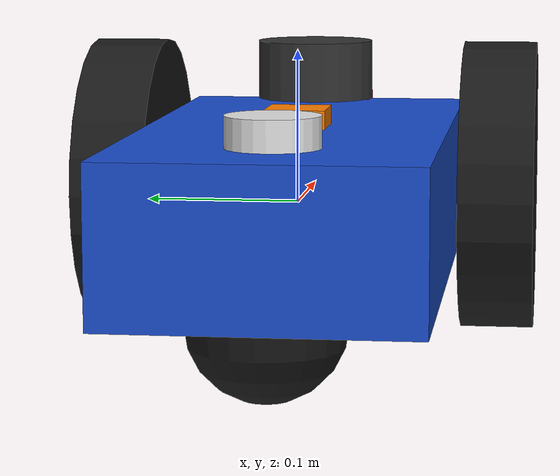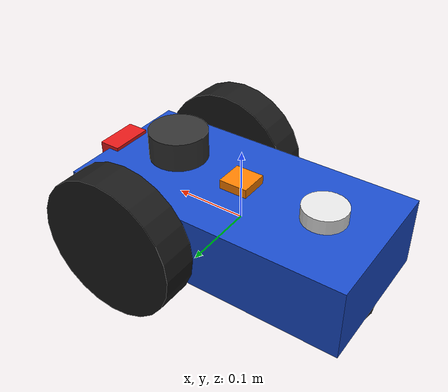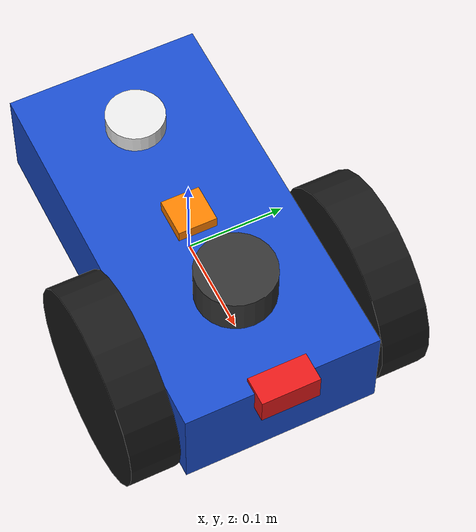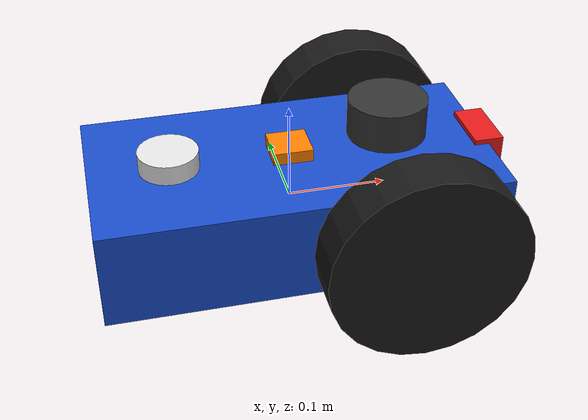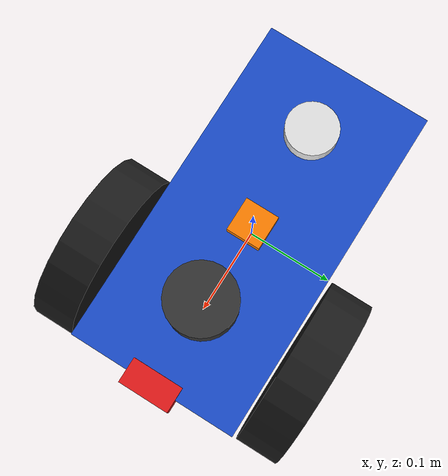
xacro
<?xml version="1.0"?>
<robot name="my_robot" xmlns:xacro="http://www.ros.org/wiki/xacro">

  <xacro:arg name="use_ros2_control" default="true" />
  <xacro:arg name="controllers_file"
             default="$(find my_robot_sensors)/config/diff_drive_controller.yaml" />

  <!-- ==================== dimensoes ==================== -->
  <xacro:property name="chassis_x" value="0.4" />
  <xacro:property name="chassis_y" value="0.2" />
  <xacro:property name="chassis_z" value="0.1" />
  <xacro:property name="chassis_mass" value="5.0" />

  <xacro:property name="wheel_radius" value="0.1" />
  <xacro:property name="wheel_length" value="0.05" />
  <xacro:property name="wheel_mass" value="0.5" />
  <xacro:property name="wheel_offset_x" value="0.1" />
  <xacro:property name="wheel_offset_y" value="0.13" />

  <xacro:property name="caster_radius" value="0.05" />
  <xacro:property name="caster_mass" value="0.2" />

  <xacro:property name="half_pi" value="1.5707963267948966" />

  <!-- ==================== macros de inercia ==================== -->
  <xacro:macro name="box_inertia" params="m x y z">
    <inertial>
      <mass value="${m}" />
      <inertia ixx="${m * (y*y + z*z) / 12.0}" ixy="0.0" ixz="0.0"
               iyy="${m * (x*x + z*z) / 12.0}" iyz="0.0"
               izz="${m * (x*x + y*y) / 12.0}" />
    </inertial>
  </xacro:macro>

  <xacro:macro name="wheel_inertia" params="m r l">
    <inertial>
      <origin xyz="0 0 0" rpy="${half_pi} 0 0" />
      <mass value="${m}" />
      <inertia ixx="${m * (3.0*r*r + l*l) / 12.0}" ixy="0.0" ixz="0.0"
               iyy="${m * (3.0*r*r + l*l) / 12.0}" iyz="0.0"
               izz="${m * r * r / 2.0}" />
    </inertial>
  </xacro:macro>

  <xacro:macro name="sphere_inertia" params="m r">
    <inertial>
      <mass value="${m}" />
      <inertia ixx="${2.0 * m * r * r / 5.0}" ixy="0.0" ixz="0.0"
               iyy="${2.0 * m * r * r / 5.0}" iyz="0.0"
               izz="${2.0 * m * r * r / 5.0}" />
    </inertial>
  </xacro:macro>

  <!-- ==================== chassi ==================== -->
  <link name="base_link">
    <visual>
      <geometry>
        <box size="${chassis_x} ${chassis_y} ${chassis_z}" />
      </geometry>
      <material name="blue">
        <color rgba="0.1 0.3 0.8 1.0" />
      </material>
    </visual>
    <collision>
      <geometry>
        <box size="${chassis_x} ${chassis_y} ${chassis_z}" />
      </geometry>
    </collision>
    <xacro:box_inertia m="${chassis_mass}" x="${chassis_x}" y="${chassis_y}" z="${chassis_z}" />
  </link>

  <gazebo reference="base_link">
    <material>Gazebo/Blue</material>
    <mu1>0.2</mu1>
    <mu2>0.2</mu2>
  </gazebo>

  <!-- ==================== rodas ==================== -->
  <xacro:macro name="wheel" params="prefix reflect">
    <link name="${prefix}_wheel">
      <visual>
        <origin xyz="0 0 0" rpy="${half_pi} 0 0" />
        <geometry>
          <cylinder radius="${wheel_radius}" length="${wheel_length}" />
        </geometry>
        <material name="black">
          <color rgba="0.1 0.1 0.1 1.0" />
        </material>
      </visual>
      <collision>
        <origin xyz="0 0 0" rpy="${half_pi} 0 0" />
        <geometry>
          <cylinder radius="${wheel_radius}" length="${wheel_length}" />
        </geometry>
      </collision>
      <xacro:wheel_inertia m="${wheel_mass}" r="${wheel_radius}" l="${wheel_length}" />
    </link>

    <joint name="${prefix}_wheel_joint" type="continuous">
      <parent link="base_link" />
      <child link="${prefix}_wheel" />
      <origin xyz="${wheel_offset_x} ${reflect * wheel_offset_y} 0" rpy="0 0 0" />
      <axis xyz="0 1 0" />
      <limit effort="100.0" velocity="20.0" />
      <dynamics damping="0.0" friction="0.0" />
    </joint>

    <gazebo reference="${prefix}_wheel">
      <material>Gazebo/Black</material>
      <fdir1>0 1 0</fdir1>
      <mu1>0.1</mu1>
      <mu2>1.5</mu2>
      <kp>1000000.0</kp>
      <kd>10.0</kd>
      <minDepth>0.001</minDepth>
      <maxVel>0.1</maxVel>
    </gazebo>
  </xacro:macro>

  <xacro:wheel prefix="left" reflect="1" />
  <xacro:wheel prefix="right" reflect="-1" />

  <!-- ==================== roda boba ==================== -->
  <link name="caster_wheel">
    <visual>
      <geometry>
        <sphere radius="${caster_radius}" />
      </geometry>
      <material name="black">
        <color rgba="0.1 0.1 0.1 1.0" />
      </material>
    </visual>
    <collision>
      <geometry>
        <sphere radius="${caster_radius}" />
      </geometry>
    </collision>
    <xacro:sphere_inertia m="${caster_mass}" r="${caster_radius}" />
  </link>

  <joint name="caster_wheel_joint" type="fixed">
    <parent link="base_link" />
    <child link="caster_wheel" />
    <origin xyz="-0.15 0 -0.05" rpy="0 0 0" />
  </joint>

  <gazebo reference="caster_wheel">
    <material>Gazebo/Black</material>
    <mu1>0.0</mu1>
    <mu2>0.0</mu2>
    <kp>1000000.0</kp>
    <kd>10.0</kd>
    <minDepth>0.001</minDepth>
  </gazebo>

  <!-- ==================== Sensores ==================== -->
  <xacro:include filename="$(find my_robot_sensors)/urdf/sensors.xacro" />

  <!-- ==================== ros2_control ==================== -->
  <xacro:if value="$(arg use_ros2_control)">
    <ros2_control name="GazeboSystem" type="system">
      <hardware>
        <plugin>gazebo_ros2_control/GazeboSystem</plugin>
      </hardware>

      <joint name="left_wheel_joint">
        <command_interface name="velocity">
          <param name="min">-20.0</param>
          <param name="max">20.0</param>
        </command_interface>
        <state_interface name="position" />
        <state_interface name="velocity" />
      </joint>

      <joint name="right_wheel_joint">
        <command_interface name="velocity">
          <param name="min">-20.0</param>
          <param name="max">20.0</param>
        </command_interface>
        <state_interface name="position" />
        <state_interface name="velocity" />
      </joint>
    </ros2_control>

    <gazebo>
      <plugin name="gazebo_ros2_control" filename="libgazebo_ros2_control.so">
        <parameters>$(arg controllers_file)</parameters>
      </plugin>
    </gazebo>
  </xacro:if>

</robot>

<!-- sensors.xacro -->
<robot xmlns:xacro="http://www.ros.org/wiki/xacro">

  <!-- 1. IMU (Orientacao, Velocidade Angular, Aceleracao Linear)           -->
  <link name="imu_link">
    <visual>
      <geometry>
        <box size="0.04 0.04 0.015" />
      </geometry>
      <material name="orange">
        <color rgba="1.0 0.5 0.0 1.0" />
      </material>
    </visual>
    <collision>
      <geometry>
        <box size="0.04 0.04 0.015" />
      </geometry>
    </collision>
    <inertial>
      <mass value="0.05" />
      <origin xyz="0 0 0" rpy="0 0 0" />
      <inertia ixx="1e-5" ixy="0" ixz="0" iyy="1e-5" iyz="0" izz="1e-5" />
    </inertial>
  </link>

  <joint name="imu_joint" type="fixed">
    <parent link="base_link" />
    <child link="imu_link" />
    <origin xyz="0 0 0.055" rpy="0 0 0" />
  </joint>

  <gazebo reference="imu_link">
    <material>Gazebo/Orange</material>
    <sensor name="imu_sensor" type="imu">
      <always_on>true</always_on>
      <update_rate>50.0</update_rate>
      <visualize>true</visualize>
      <imu>
        <angular_velocity>
          <x>
            <noise type="gaussian">
              <mean>0.0</mean>
              <stddev>0.005</stddev>
            </noise>
          </x>
          <y>
            <noise type="gaussian">
              <mean>0.0</mean>
              <stddev>0.005</stddev>
            </noise>
          </y>
          <z>
            <noise type="gaussian">
              <mean>0.0</mean>
              <stddev>0.005</stddev>
            </noise>
          </z>
        </angular_velocity>
        <linear_acceleration>
          <x>
            <noise type="gaussian">
              <mean>0.0</mean>
              <stddev>0.05</stddev>
            </noise>
          </x>
          <y>
            <noise type="gaussian">
              <mean>0.0</mean>
              <stddev>0.05</stddev>
            </noise>
          </y>
          <z>
            <noise type="gaussian">
              <mean>0.0</mean>
              <stddev>0.05</stddev>
            </noise>
          </z>
        </linear_acceleration>
      </imu>
      <plugin name="imu_plugin" filename="libgazebo_ros_imu_sensor.so">
        <ros>
          <remapping>~/out:=/imu/data</remapping>
        </ros>
        <initial_orientation_as_reference>false</initial_orientation_as_reference>
        <frame_name>imu_link</frame_name>
      </plugin>
    </sensor>
  </gazebo>

  <!-- 2. GPS (Posicao Global e conversao posterior para XYZ)               -->
  <link name="gps_link">
    <visual>
      <geometry>
        <cylinder radius="0.03" length="0.02" />
      </geometry>
      <material name="white">
        <color rgba="0.9 0.9 0.9 1.0" />
      </material>
    </visual>
    <collision>
      <geometry>
        <cylinder radius="0.03" length="0.02" />
      </geometry>
    </collision>
    <inertial>
      <mass value="0.05" />
      <origin xyz="0 0 0" rpy="0 0 0" />
      <inertia ixx="1e-5" ixy="0" ixz="0" iyy="1e-5" iyz="0" izz="1e-5" />
    </inertial>
  </link>

  <joint name="gps_joint" type="fixed">
    <parent link="base_link" />
    <child link="gps_link" />
    <origin xyz="-0.12 0 0.06" rpy="0 0 0" />
  </joint>

  <gazebo reference="gps_link">
    <material>Gazebo/White</material>
    <sensor name="gps_sensor" type="gps">
      <always_on>true</always_on>
      <update_rate>10.0</update_rate>
      <gps>
        <position_sensing>
          <horizontal>
            <noise type="gaussian">
              <mean>0.0</mean>
              <stddev>0.3</stddev>
            </noise>
          </horizontal>
          <vertical>
            <noise type="gaussian">
              <mean>0.0</mean>
              <stddev>0.5</stddev>
            </noise>
          </vertical>
        </position_sensing>
        <velocity_sensing>
          <horizontal>
            <noise type="gaussian">
              <mean>0.0</mean>
              <stddev>0.05</stddev>
            </noise>
          </horizontal>
          <vertical>
            <noise type="gaussian">
              <mean>0.0</mean>
              <stddev>0.05</stddev>
            </noise>
          </vertical>
        </velocity_sensing>
      </gps>
      <plugin name="gps_plugin" filename="libgazebo_ros_gps_sensor.so">
        <ros>
          <remapping>~/out:=/gps/fix</remapping>
        </ros>
        <frame_name>gps_link</frame_name>
      </plugin>
    </sensor>
  </gazebo>

  <!-- 3. Camera RGB Frontal                                                -->
  <link name="camera_link">
    <visual>
      <origin xyz="0 0 0" rpy="0 0 0" />
      <geometry>
        <box size="0.03 0.06 0.03" />
      </geometry>
      <material name="red">
        <color rgba="0.9 0.1 0.1 1.0" />
      </material>
    </visual>
    <collision>
      <geometry>
        <box size="0.03 0.06 0.03" />
      </geometry>
    </collision>
    <inertial>
      <mass value="0.08" />
      <origin xyz="0 0 0" rpy="0 0 0" />
      <inertia ixx="1e-5" ixy="0" ixz="0" iyy="1e-5" iyz="0" izz="1e-5" />
    </inertial>
  </link>

  <joint name="camera_joint" type="fixed">
    <parent link="base_link" />
    <child link="camera_link" />
    <origin xyz="0.20 0 0.04" rpy="0 0 0" />
  </joint>

  <!-- Link de convensao optica ROS (Z apontando para a frente da lente) -->
  <link name="camera_optical_link" />

  <joint name="camera_optical_joint" type="fixed">
    <parent link="camera_link" />
    <child link="camera_optical_link" />
    <origin xyz="0 0 0" rpy="-1.57079632679 0 -1.57079632679" />
  </joint>

  <gazebo reference="camera_link">
    <material>Gazebo/Red</material>
    <sensor type="camera" name="front_camera">
      <update_rate>30.0</update_rate>
      <camera name="head">
        <horizontal_fov>1.3962634</horizontal_fov>
        <image>
          <width>640</width>
          <height>480</height>
          <format>R8G8B8</format>
        </image>
        <clip>
          <near>0.05</near>
          <far>30.0</far>
        </clip>
        <noise>
          <type>gaussian</type>
          <mean>0.0</mean>
          <stddev>0.008</stddev>
        </noise>
      </camera>
      <plugin name="camera_controller" filename="libgazebo_ros_camera.so">
        <ros>
          <remapping>~/image_raw:=/camera/image_raw</remapping>
          <remapping>~/camera_info:=/camera/camera_info</remapping>
        </ros>
        <camera_name>camera</camera_name>
        <frame_name>camera_optical_link</frame_name>
      </plugin>
    </sensor>
  </gazebo>

  <!-- 4. Lidar 2D Frontal (LaserScan)                                      -->
  <link name="lidar_link">
    <visual>
      <geometry>
        <cylinder radius="0.04" length="0.04" />
      </geometry>
      <material name="dark_grey">
        <color rgba="0.2 0.2 0.2 1.0" />
      </material>
    </visual>
    <collision>
      <geometry>
        <cylinder radius="0.04" length="0.04" />
      </geometry>
    </collision>
    <inertial>
      <mass value="0.12" />
      <origin xyz="0 0 0" rpy="0 0 0" />
      <inertia ixx="1e-5" ixy="0" ixz="0" iyy="1e-5" iyz="0" izz="1e-5" />
    </inertial>
  </link>

  <joint name="lidar_joint" type="fixed">
    <parent link="base_link" />
    <child link="lidar_link" />
    <origin xyz="0.10 0 0.08" rpy="0 0 0" />
  </joint>

  <gazebo reference="lidar_link">
    <material>Gazebo/DarkGrey</material>
    <sensor type="ray" name="lidar_sensor">
      <pose>0 0 0 0 0 0</pose>
      <visualize>false</visualize>
      <update_rate>15.0</update_rate>
      <ray>
        <scan>
          <horizontal>
            <samples>360</samples>
            <resolution>1</resolution>
            <min_angle>-3.14159265</min_angle>
            <max_angle>3.14159265</max_angle>
          </horizontal>
        </scan>
        <range>
          <min>0.12</min>
          <max>12.0</max>
          <resolution>0.01</resolution>
        </range>
        <noise>
          <type>gaussian</type>
          <mean>0.0</mean>
          <stddev>0.015</stddev>
        </noise>
      </ray>
      <plugin name="lidar_plugin" filename="libgazebo_ros_ray_sensor.so">
        <ros>
          <remapping>~/out:=/scan</remapping>
        </ros>
        <output_type>sensor_msgs/LaserScan</output_type>
        <frame_name>lidar_link</frame_name>
      </plugin>
    </sensor>
  </gazebo>

</robot>
